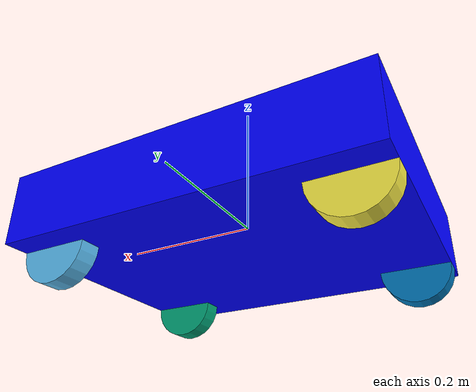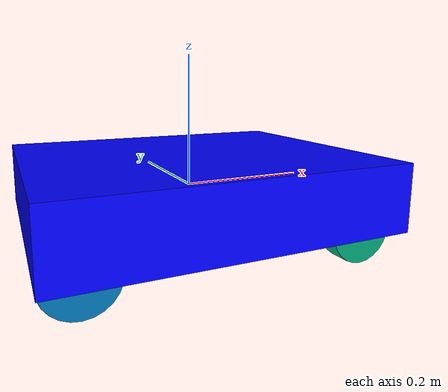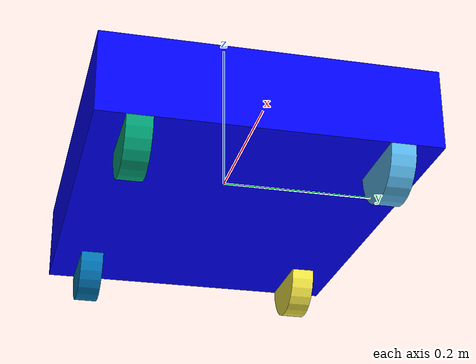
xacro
<?xml version="1.0"?>
<robot name="quadbot" xmlns:xacro="http://ros.org/wiki/xacro">
  <xacro:arg name="use_mock_hardware" default="true"/>

  <link name="base_link">
    <visual>
      <geometry><box size="0.5 0.4 0.1"/></geometry>
      <material name="blue"><color rgba="0 0 1 1"/></material>
    </visual>
    <collision><geometry><box size="0.5 0.4 0.1"/></geometry></collision>

    <inertial>
      <mass value="10"/>
      <inertia ixx="1" ixy="0" ixz="0" iyy="1" iyz="0" izz="1"/>
    </inertial>
  </link>

  <link name="front_left_wheel">
    <visual><geometry><cylinder radius="0.05" length="0.03"/></geometry></visual>
    <inertial>
      <mass value="10"/>
      <inertia ixx="1" ixy="0" ixz="0" iyy="1" iyz="0" izz="1"/>
    </inertial>
  </link>
  <joint name="front_left_wheel_joint" type="continuous">
    <parent link="base_link"/><child link="front_left_wheel"/>
    <origin xyz="0.2 0.15 -0.05" rpy="-1.5708 0 0"/>
    <axis xyz="0 1 0"/>
  </joint>

  <link name="front_right_wheel">
    <visual><geometry><cylinder radius="0.05" length="0.03"/></geometry></visual>
    <inertial>
      <mass value="10"/>
      <inertia ixx="1" ixy="0" ixz="0" iyy="1" iyz="0" izz="1"/>
    </inertial>
  </link>
  <joint name="front_right_wheel_joint" type="continuous">
    <parent link="base_link"/><child link="front_right_wheel"/>
    <origin xyz="0.2 -0.15 -0.05" rpy="-1.5708 0 0"/>
    <axis xyz="0 1 0"/>
  </joint>

  <link name="rear_left_wheel">
    <visual><geometry><cylinder radius="0.05" length="0.03"/></geometry></visual>
    <inertial>
      <mass value="10"/>
      <inertia ixx="1" ixy="0" ixz="0" iyy="1" iyz="0" izz="1"/>
    </inertial>
  </link>
  <joint name="rear_left_wheel_joint" type="continuous">
    <parent link="base_link"/><child link="rear_left_wheel"/>
    <origin xyz="-0.2 0.15 -0.05" rpy="-1.5708 0 0"/>
    <axis xyz="0 1 0"/>
  </joint>

  <link name="rear_right_wheel">
    <visual><geometry><cylinder radius="0.05" length="0.03"/></geometry></visual>
    <inertial>
      <mass value="10"/>
      <inertia ixx="1" ixy="0" ixz="0" iyy="1" iyz="0" izz="1"/>
    </inertial>
  </link>
  <joint name="rear_right_wheel_joint" type="continuous">
    <parent link="base_link"/><child link="rear_right_wheel"/>
    <origin xyz="-0.2 -0.15 -0.05" rpy="-1.5708 0 0"/>
    <axis xyz="0 1 0"/>
  </joint>

  <ros2_control name="QuadBotSystem" type="system">
    <hardware>

      <plugin>mock_components/GenericSystem</plugin>

      <param name="use_mock_hardware">true</param>
    </hardware>
    <joint name="front_left_wheel_joint">
      <command_interface name="velocity"/><state_interface name="position"/><state_interface name="velocity"/>
    </joint>
    <joint name="front_right_wheel_joint">
      <command_interface name="velocity"/><state_interface name="position"/><state_interface name="velocity"/>
    </joint>
    <joint name="rear_left_wheel_joint">
      <command_interface name="velocity"/><state_interface name="position"/><state_interface name="velocity"/>
    </joint>
    <joint name="rear_right_wheel_joint">
      <command_interface name="velocity"/><state_interface name="position"/><state_interface name="velocity"/>
    </joint>
  </ros2_control>
</robot>
